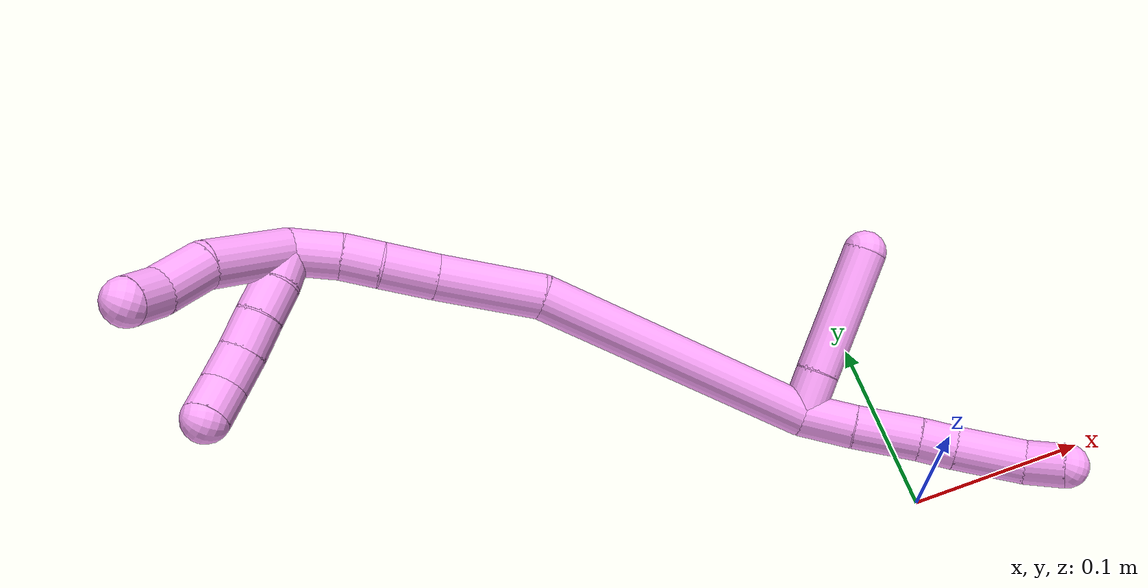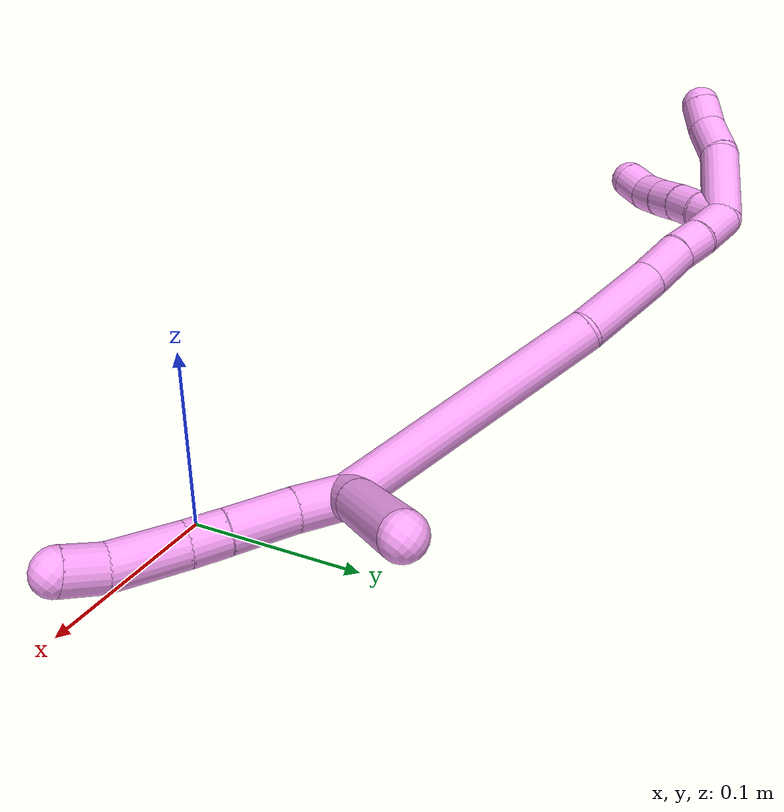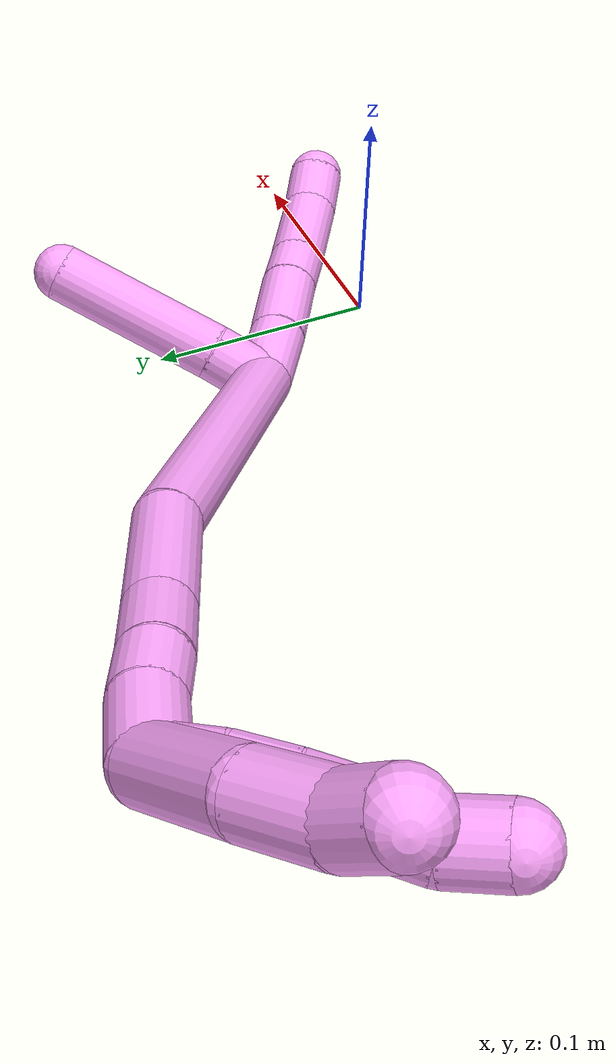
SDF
<sdf version="1.7">
 <world name="default">
  <model name="photoneo_s_sensor">
   <static>1</static>
   <pose>0 0 2 1.57079 1.57079 3.14159</pose>
   <link name="link">
    <inertial><mass>0.1</mass></inertial>
    <sensor name="sensor" type="depth">
     <update_rate>30</update_rate>
     <camera>
      <horizontal_fov>1.22</horizontal_fov>
      <image><width>1920</width><height>1200</height><format>B8G8R8</format></image>
      <clip><near>0.1</near><far>4</far></clip>
      <depth_camera><output>points</output></depth_camera>
     </camera>
     <plugin name="camera_plugin" filename="libgazebo_ros_depth_camera.so">
      <baseline>0.2</baseline>
      <alwaysOn>1</alwaysOn>
      <updateRate>0.0</updateRate>
      <cameraName>camera_ir</cameraName>
      <imageTopicName>/camera/color/image_raw</imageTopicName>
      <cameraInfoTopicName>/camera/color/camera_info</cameraInfoTopicName>
      <depthImageTopicName>/camera/depth/image_raw</depthImageTopicName>
      <depthImageCameraInfoTopicName>/camera/depth/camera_info</depthImageCameraInfoTopicName>
      <pointCloudTopicName>/camera/depth/points</pointCloudTopicName>
      <frameName>fr_optical</frameName>
      <pointCloudCutoff>0.1</pointCloudCutoff>
      <pointCloudCutoffMax>2.0</pointCloudCutoffMax>
      <distortionK1>0</distortionK1>
      <distortionK2>0</distortionK2>
      <distortionK3>0</distortionK3>
      <distortionT1>0</distortionT1>
      <distortionT2>0</distortionT2>
      <CxPrime>0</CxPrime>
      <Cx>0</Cx>
      <Cy>0</Cy>
      <focalLength>0</focalLength>
      <hackBaseline>0</hackBaseline>
     </plugin>
    </sensor>
   </link>
  </model>
  <model name="bin">
   <static>1</static>
   <link name="bottom">
    <collision name="collision-bottom">
     <pose>0 0 -0.01 0 -0 0</pose>
     <geometry><box><size>0.8 0.6 0.02</size></box></geometry>
     <surface>
      <friction><ode><mu>100</mu><mu2>100</mu2></ode></friction>
      <contact><collide_bitmask>65535</collide_bitmask></contact>
     </surface>
    </collision>
   </link>
   <link name="west_wall">
    <collision name="collision-west_wall">
     <pose>-0.41 0 0.1 0 -0 0</pose>
     <geometry><box><size>0.02 0.6 0.2</size></box></geometry>
     <surface>
      <friction><ode><mu>100</mu><mu2>100</mu2></ode></friction>
      <contact><collide_bitmask>65535</collide_bitmask></contact>
     </surface>
    </collision>
   </link>
   <link name="east_wall">
    <collision name="collision-east_wall">
     <pose>0.41 0 0.1 0 -0 0</pose>
     <geometry><box><size>0.02 0.6 0.2</size></box></geometry>
     <surface>
      <friction><ode><mu>100</mu><mu2>100</mu2></ode></friction>
      <contact><collide_bitmask>65535</collide_bitmask></contact>
     </surface>
    </collision>
   </link>
   <link name="south_wall">
    <collision name="collision-south_wall">
     <pose>0 -0.31 0.1 0 -0 0</pose>
     <geometry><box><size>0.8 0.02 0.2</size></box></geometry>
     <surface>
      <friction><ode><mu>100</mu><mu2>100</mu2></ode></friction>
      <contact><collide_bitmask>65535</collide_bitmask></contact>
     </surface>
    </collision>
   </link>
   <link name="north_wall">
    <collision name="collision-north_wall">
     <pose>0 0.31 0.1 0 -0 0</pose>
     <geometry><box><size>0.8 0.02 0.2</size></box></geometry>
     <surface>
      <friction><ode><mu>100</mu><mu2>100</mu2></ode></friction>
      <contact><collide_bitmask>65535</collide_bitmask></contact>
     </surface>
    </collision>
   </link>
  </model>
  <model name="4">
   <static>0</static>
   <link name="4">
    <collision name="collision-cylinder-e_1_2_8">
     <pose>0.007966 -0.00544 -0.011842 2.71094 0.548668 1.82028</pose>
     <geometry><cylinder><radius>0.0125</radius><length>0.030547</length></cylinder></geometry>
     <surface>
      <friction><ode><mu>1.16</mu><mu2>1.16</mu2><slip1>0</slip1><slip2>0</slip2></ode></friction>
      <contact><ode><kp>1e+06</kp><kd>1</kd><max_vel>0</max_vel><min_depth>0.001</min_depth></ode></contact>
     </surface>
    </collision>
    <visual name="visual-cylinder-e_1_2_8">
     <pose>0.007966 -0.00544 -0.011842 2.71094 0.548668 1.82028</pose>
     <geometry><cylinder><radius>0.0125</radius><length>0.030547</length></cylinder></geometry>
     <material><ambient>1 0.65098 0.996078 1</ambient></material>
    </visual>
    <collision name="collision-cylinder-e_2_8_9">
     <pose>0.0256 -0.016323 -0.03844 2.78824 0.55117 2.01527</pose>
     <geometry><cylinder><radius>0.0125</radius><length>0.036925</length></cylinder></geometry>
     <surface>
      <friction><ode><mu>1.16</mu><mu2>1.16</mu2><slip1>0</slip1><slip2>0</slip2></ode></friction>
      <contact><ode><kp>1e+06</kp><kd>1</kd><max_vel>0</max_vel><min_depth>0.001</min_depth></ode></contact>
     </surface>
    </collision>
    <visual name="visual-cylinder-e_2_8_9">
     <pose>0.0256 -0.016323 -0.03844 2.78824 0.55117 2.01527</pose>
     <geometry><cylinder><radius>0.0125</radius><length>0.036925</length></cylinder></geometry>
     <material><ambient>1 0.65098 0.996078 1</ambient></material>
    </visual>
    <collision name="collision-cylinder-e_3_9_10">
     <pose>0.040249 -0.025137 -0.061328 2.74861 0.514896 1.84687</pose>
     <geometry><cylinder><radius>0.0125</radius><length>0.020227</length></cylinder></geometry>
     <surface>
      <friction><ode><mu>1.16</mu><mu2>1.16</mu2><slip1>0</slip1><slip2>0</slip2></ode></friction>
      <contact><ode><kp>1e+06</kp><kd>1</kd><max_vel>0</max_vel><min_depth>0.001</min_depth></ode></contact>
     </surface>
    </collision>
    <visual name="visual-cylinder-e_3_9_10">
     <pose>0.040249 -0.025137 -0.061328 2.74861 0.514896 1.84687</pose>
     <geometry><cylinder><radius>0.0125</radius><length>0.020227</length></cylinder></geometry>
     <material><ambient>1 0.65098 0.996078 1</ambient></material>
    </visual>
    <collision name="collision-cylinder-e_4_10_11">
     <pose>0.05584 -0.034881 -0.084902 2.75014 0.565822 1.9445</pose>
     <geometry><cylinder><radius>0.0125</radius><length>0.039582</length></cylinder></geometry>
     <surface>
      <friction><ode><mu>1.16</mu><mu2>1.16</mu2><slip1>0</slip1><slip2>0</slip2></ode></friction>
      <contact><ode><kp>1e+06</kp><kd>1</kd><max_vel>0</max_vel><min_depth>0.001</min_depth></ode></contact>
     </surface>
    </collision>
    <visual name="visual-cylinder-e_4_10_11">
     <pose>0.05584 -0.034881 -0.084902 2.75014 0.565822 1.9445</pose>
     <geometry><cylinder><radius>0.0125</radius><length>0.039582</length></cylinder></geometry>
     <material><ambient>1 0.65098 0.996078 1</ambient></material>
    </visual>
    <collision name="collision-cylinder-e_5_11_6">
     <pose>0.074619 -0.045167 -0.1072 2.62301 0.802629 2.02424</pose>
     <geometry><cylinder><radius>0.0125</radius><length>0.022719</length></cylinder></geometry>
     <surface>
      <friction><ode><mu>1.16</mu><mu2>1.16</mu2><slip1>0</slip1><slip2>0</slip2></ode></friction>
      <contact><ode><kp>1e+06</kp><kd>1</kd><max_vel>0</max_vel><min_depth>0.001</min_depth></ode></contact>
     </surface>
    </collision>
    <visual name="visual-cylinder-e_5_11_6">
     <pose>0.074619 -0.045167 -0.1072 2.62301 0.802629 2.02424</pose>
     <geometry><cylinder><radius>0.0125</radius><length>0.022719</length></cylinder></geometry>
     <material><ambient>1 0.65098 0.996078 1</ambient></material>
    </visual>
    <collision name="collision-cylinder-e_1_2_12">
     <pose>0.008727 0.009105 -0.000364 -1.61079 0.763811 -0.791884</pose>
     <geometry><cylinder><radius>0.0125</radius><length>0.025236</length></cylinder></geometry>
     <surface>
      <friction><ode><mu>1.16</mu><mu2>1.16</mu2><slip1>0</slip1><slip2>0</slip2></ode></friction>
      <contact><ode><kp>1e+06</kp><kd>1</kd><max_vel>0</max_vel><min_depth>0.001</min_depth></ode></contact>
     </surface>
    </collision>
    <visual name="visual-cylinder-e_1_2_12">
     <pose>0.008727 0.009105 -0.000364 -1.61079 0.763811 -0.791884</pose>
     <geometry><cylinder><radius>0.0125</radius><length>0.025236</length></cylinder></geometry>
     <material><ambient>1 0.65098 0.996078 1</ambient></material>
    </visual>
    <collision name="collision-cylinder-e_2_12_5">
     <pose>0.042011 0.046244 -0.003655 -1.67482 0.716682 -0.787839</pose>
     <geometry><cylinder><radius>0.0125</radius><length>0.074764</length></cylinder></geometry>
     <surface>
      <friction><ode><mu>1.16</mu><mu2>1.16</mu2><slip1>0</slip1><slip2>0</slip2></ode></friction>
      <contact><ode><kp>1e+06</kp><kd>1</kd><max_vel>0</max_vel><min_depth>0.001</min_depth></ode></contact>
     </surface>
    </collision>
    <visual name="visual-cylinder-e_2_12_5">
     <pose>0.042011 0.046244 -0.003655 -1.67482 0.716682 -0.787839</pose>
     <geometry><cylinder><radius>0.0125</radius><length>0.074764</length></cylinder></geometry>
     <material><ambient>1 0.65098 0.996078 1</ambient></material>
    </visual>
    <collision name="collision-cylinder-e_1_2_13">
     <pose>-0.011824 0.021105 0.078692 -0.262036 -0.144119 0.019023</pose>
     <geometry><cylinder><radius>0.0125</radius><length>0.164654</length></cylinder></geometry>
     <surface>
      <friction><ode><mu>1.16</mu><mu2>1.16</mu2><slip1>0</slip1><slip2>0</slip2></ode></friction>
      <contact><ode><kp>1e+06</kp><kd>1</kd><max_vel>0</max_vel><min_depth>0.001</min_depth></ode></contact>
     </surface>
    </collision>
    <visual name="visual-cylinder-e_1_2_13">
     <pose>-0.011824 0.021105 0.078692 -0.262036 -0.144119 0.019023</pose>
     <geometry><cylinder><radius>0.0125</radius><length>0.164654</length></cylinder></geometry>
     <material><ambient>1 0.65098 0.996078 1</ambient></material>
    </visual>
    <collision name="collision-cylinder-e_2_13_14">
     <pose>-0.032407 0.044482 0.184916 -0.082298 -0.307033 0.012741</pose>
     <geometry><cylinder><radius>0.0125</radius><length>0.057962</length></cylinder></geometry>
     <surface>
      <friction><ode><mu>1.16</mu><mu2>1.16</mu2><slip1>0</slip1><slip2>0</slip2></ode></friction>
      <contact><ode><kp>1e+06</kp><kd>1</kd><max_vel>0</max_vel><min_depth>0.001</min_depth></ode></contact>
     </surface>
    </collision>
    <visual name="visual-cylinder-e_2_13_14">
     <pose>-0.032407 0.044482 0.184916 -0.082298 -0.307033 0.012741</pose>
     <geometry><cylinder><radius>0.0125</radius><length>0.057962</length></cylinder></geometry>
     <material><ambient>1 0.65098 0.996078 1</ambient></material>
    </visual>
    <collision name="collision-cylinder-e_3_14_15">
     <pose>-0.044712 0.047619 0.226737 -0.060567 -0.242877 0.007394</pose>
     <geometry><cylinder><radius>0.0125</radius><length>0.029494</length></cylinder></geometry>
     <surface>
      <friction><ode><mu>1.16</mu><mu2>1.16</mu2><slip1>0</slip1><slip2>0</slip2></ode></friction>
      <contact><ode><kp>1e+06</kp><kd>1</kd><max_vel>0</max_vel><min_depth>0.001</min_depth></ode></contact>
     </surface>
    </collision>
    <visual name="visual-cylinder-e_3_14_15">
     <pose>-0.044712 0.047619 0.226737 -0.060567 -0.242877 0.007394</pose>
     <geometry><cylinder><radius>0.0125</radius><length>0.029494</length></cylinder></geometry>
     <material><ambient>1 0.65098 0.996078 1</ambient></material>
    </visual>
    <collision name="collision-cylinder-e_4_15_16">
     <pose>-0.051624 0.04996 0.250752 -0.150374 -0.329574 0.025052</pose>
     <geometry><cylinder><radius>0.0125</radius><length>0.020796</length></cylinder></geometry>
     <surface>
      <friction><ode><mu>1.16</mu><mu2>1.16</mu2><slip1>0</slip1><slip2>0</slip2></ode></friction>
      <contact><ode><kp>1e+06</kp><kd>1</kd><max_vel>0</max_vel><min_depth>0.001</min_depth></ode></contact>
     </surface>
    </collision>
    <visual name="visual-cylinder-e_4_15_16">
     <pose>-0.051624 0.04996 0.250752 -0.150374 -0.329574 0.025052</pose>
     <geometry><cylinder><radius>0.0125</radius><length>0.020796</length></cylinder></geometry>
     <material><ambient>1 0.65098 0.996078 1</ambient></material>
    </visual>
    <collision name="collision-cylinder-e_5_16_1">
     <pose>-0.060045 0.051689 0.273045 -0.020361 -0.382459 0.003942</pose>
     <geometry><cylinder><radius>0.0125</radius><length>0.027094</length></cylinder></geometry>
     <surface>
      <friction><ode><mu>1.16</mu><mu2>1.16</mu2><slip1>0</slip1><slip2>0</slip2></ode></friction>
      <contact><ode><kp>1e+06</kp><kd>1</kd><max_vel>0</max_vel><min_depth>0.001</min_depth></ode></contact>
     </surface>
    </collision>
    <visual name="visual-cylinder-e_5_16_1">
     <pose>-0.060045 0.051689 0.273045 -0.020361 -0.382459 0.003942</pose>
     <geometry><cylinder><radius>0.0125</radius><length>0.027094</length></cylinder></geometry>
     <material><ambient>1 0.65098 0.996078 1</ambient></material>
    </visual>
    <collision name="collision-cylinder-e_1_1_17">
     <pose>-0.068163 0.042536 0.287059 1.41809 -0.311236 -0.267569</pose>
     <geometry><cylinder><radius>0.0125</radius><length>0.02</length></cylinder></geometry>
     <surface>
      <friction><ode><mu>1.16</mu><mu2>1.16</mu2><slip1>0</slip1><slip2>0</slip2></ode></friction>
      <contact><ode><kp>1e+06</kp><kd>1</kd><max_vel>0</max_vel><min_depth>0.001</min_depth></ode></contact>
     </surface>
    </collision>
    <visual name="visual-cylinder-e_1_1_17">
     <pose>-0.068163 0.042536 0.287059 1.41809 -0.311236 -0.267569</pose>
     <geometry><cylinder><radius>0.0125</radius><length>0.02</length></cylinder></geometry>
     <material><ambient>1 0.65098 0.996078 1</ambient></material>
    </visual>
    <collision name="collision-cylinder-e_2_17_18">
     <pose>-0.075256 0.024254 0.290748 1.32342 -0.414791 -0.324884</pose>
     <geometry><cylinder><radius>0.0125</radius><length>0.02</length></cylinder></geometry>
     <surface>
      <friction><ode><mu>1.16</mu><mu2>1.16</mu2><slip1>0</slip1><slip2>0</slip2></ode></friction>
      <contact><ode><kp>1e+06</kp><kd>1</kd><max_vel>0</max_vel><min_depth>0.001</min_depth></ode></contact>
     </surface>
    </collision>
    <visual name="visual-cylinder-e_2_17_18">
     <pose>-0.075256 0.024254 0.290748 1.32342 -0.414791 -0.324884</pose>
     <geometry><cylinder><radius>0.0125</radius><length>0.02</length></cylinder></geometry>
     <material><ambient>1 0.65098 0.996078 1</ambient></material>
    </visual>
    <collision name="collision-cylinder-e_3_18_19">
     <pose>-0.083961 0.006736 0.294835 1.36041 -0.486531 -0.396286</pose>
     <geometry><cylinder><radius>0.0125</radius><length>0.02</length></cylinder></geometry>
     <surface>
      <friction><ode><mu>1.16</mu><mu2>1.16</mu2><slip1>0</slip1><slip2>0</slip2></ode></friction>
      <contact><ode><kp>1e+06</kp><kd>1</kd><max_vel>0</max_vel><min_depth>0.001</min_depth></ode></contact>
     </surface>
    </collision>
    <visual name="visual-cylinder-e_3_18_19">
     <pose>-0.083961 0.006736 0.294835 1.36041 -0.486531 -0.396286</pose>
     <geometry><cylinder><radius>0.0125</radius><length>0.02</length></cylinder></geometry>
     <material><ambient>1 0.65098 0.996078 1</ambient></material>
    </visual>
    <collision name="collision-cylinder-e_4_19_20">
     <pose>-0.093208 -0.010477 0.299066 1.29933 -0.474727 -0.363509</pose>
     <geometry><cylinder><radius>0.0125</radius><length>0.02</length></cylinder></geometry>
     <surface>
      <friction><ode><mu>1.16</mu><mu2>1.16</mu2><slip1>0</slip1><slip2>0</slip2></ode></friction>
      <contact><ode><kp>1e+06</kp><kd>1</kd><max_vel>0</max_vel><min_depth>0.001</min_depth></ode></contact>
     </surface>
    </collision>
    <visual name="visual-cylinder-e_4_19_20">
     <pose>-0.093208 -0.010477 0.299066 1.29933 -0.474727 -0.363509</pose>
     <geometry><cylinder><radius>0.0125</radius><length>0.02</length></cylinder></geometry>
     <material><ambient>1 0.65098 0.996078 1</ambient></material>
    </visual>
    <collision name="collision-cylinder-e_5_20_4">
     <pose>-0.099355 -0.028435 0.304508 1.25602 -0.158299 -0.11505</pose>
     <geometry><cylinder><radius>0.0125</radius><length>0.02</length></cylinder></geometry>
     <surface>
      <friction><ode><mu>1.16</mu><mu2>1.16</mu2><slip1>0</slip1><slip2>0</slip2></ode></friction>
      <contact><ode><kp>1e+06</kp><kd>1</kd><max_vel>0</max_vel><min_depth>0.001</min_depth></ode></contact>
     </surface>
    </collision>
    <visual name="visual-cylinder-e_5_20_4">
     <pose>-0.099355 -0.028435 0.304508 1.25602 -0.158299 -0.11505</pose>
     <geometry><cylinder><radius>0.0125</radius><length>0.02</length></cylinder></geometry>
     <material><ambient>1 0.65098 0.996078 1</ambient></material>
    </visual>
    <collision name="collision-cylinder-e_1_1_21">
     <pose>-0.064539 0.038158 0.307219 0.567927 0.021928 0.0064</pose>
     <geometry><cylinder><radius>0.0125</radius><length>0.051277</length></cylinder></geometry>
     <surface>
      <friction><ode><mu>1.16</mu><mu2>1.16</mu2><slip1>0</slip1><slip2>0</slip2></ode></friction>
      <contact><ode><kp>1e+06</kp><kd>1</kd><max_vel>0</max_vel><min_depth>0.001</min_depth></ode></contact>
     </surface>
    </collision>
    <visual name="visual-cylinder-e_1_1_21">
     <pose>-0.064539 0.038158 0.307219 0.567927 0.021928 0.0064</pose>
     <geometry><cylinder><radius>0.0125</radius><length>0.051277</length></cylinder></geometry>
     <material><ambient>1 0.65098 0.996078 1</ambient></material>
    </visual>
    <collision name="collision-cylinder-e_2_21_22">
     <pose>-0.066198 0.01387 0.338336 0.834993 -0.155575 -0.069121</pose>
     <geometry><cylinder><radius>0.0125</radius><length>0.028678</length></cylinder></geometry>
     <surface>
      <friction><ode><mu>1.16</mu><mu2>1.16</mu2><slip1>0</slip1><slip2>0</slip2></ode></friction>
      <contact><ode><kp>1e+06</kp><kd>1</kd><max_vel>0</max_vel><min_depth>0.001</min_depth></ode></contact>
     </surface>
    </collision>
    <visual name="visual-cylinder-e_2_21_22">
     <pose>-0.066198 0.01387 0.338336 0.834993 -0.155575 -0.069121</pose>
     <geometry><cylinder><radius>0.0125</radius><length>0.028678</length></cylinder></geometry>
     <material><ambient>1 0.65098 0.996078 1</ambient></material>
    </visual>
    <collision name="collision-cylinder-e_3_22_3">
     <pose>-0.066881 -0.003466 0.35501 0.761683 0.15421 0.061847</pose>
     <geometry><cylinder><radius>0.0125</radius><length>0.020045</length></cylinder></geometry>
     <surface>
      <friction><ode><mu>1.16</mu><mu2>1.16</mu2><slip1>0</slip1><slip2>0</slip2></ode></friction>
      <contact><ode><kp>1e+06</kp><kd>1</kd><max_vel>0</max_vel><min_depth>0.001</min_depth></ode></contact>
     </surface>
    </collision>
    <visual name="visual-cylinder-e_3_22_3">
     <pose>-0.066881 -0.003466 0.35501 0.761683 0.15421 0.061847</pose>
     <geometry><cylinder><radius>0.0125</radius><length>0.020045</length></cylinder></geometry>
     <material><ambient>1 0.65098 0.996078 1</ambient></material>
    </visual>
    <collision name="collision-sphere-3">
     <pose>-0.065341 -0.010301 0.362178 0 -0 0</pose>
     <geometry><sphere><radius>0.0125</radius></sphere></geometry>
     <surface>
      <friction><ode><mu>1.16</mu><mu2>1.16</mu2><slip1>0</slip1><slip2>0</slip2></ode></friction>
      <contact><ode><kp>1e+06</kp><kd>1</kd><max_vel>0</max_vel><min_depth>0.001</min_depth></ode></contact>
     </surface>
    </collision>
    <visual name="visual-sphere-3">
     <pose>-0.065341 -0.010301 0.362178 0 -0 0</pose>
     <geometry><sphere><radius>0.0125</radius></sphere></geometry>
     <material><ambient>1 0.65098 0.996078 1</ambient></material>
    </visual>
    <collision name="collision-sphere-22">
     <pose>-0.06842 0.003369 0.347843 0 -0 0</pose>
     <geometry><sphere><radius>0.0125</radius></sphere></geometry>
     <surface>
      <friction><ode><mu>1.16</mu><mu2>1.16</mu2><slip1>0</slip1><slip2>0</slip2></ode></friction>
      <contact><ode><kp>1e+06</kp><kd>1</kd><max_vel>0</max_vel><min_depth>0.001</min_depth></ode></contact>
     </surface>
    </collision>
    <visual name="visual-sphere-22">
     <pose>-0.06842 0.003369 0.347843 0 -0 0</pose>
     <geometry><sphere><radius>0.0125</radius></sphere></geometry>
     <material><ambient>1 0.65098 0.996078 1</ambient></material>
    </visual>
    <collision name="collision-sphere-21">
     <pose>-0.063977 0.024371 0.328828 0 -0 0</pose>
     <geometry><sphere><radius>0.0125</radius></sphere></geometry>
     <surface>
      <friction><ode><mu>1.16</mu><mu2>1.16</mu2><slip1>0</slip1><slip2>0</slip2></ode></friction>
      <contact><ode><kp>1e+06</kp><kd>1</kd><max_vel>0</max_vel><min_depth>0.001</min_depth></ode></contact>
     </surface>
    </collision>
    <visual name="visual-sphere-21">
     <pose>-0.063977 0.024371 0.328828 0 -0 0</pose>
     <geometry><sphere><radius>0.0125</radius></sphere></geometry>
     <material><ambient>1 0.65098 0.996078 1</ambient></material>
    </visual>
    <collision name="collision-sphere-4">
     <pose>-0.100931 -0.037825 0.307566 0 -0 0</pose>
     <geometry><sphere><radius>0.0125</radius></sphere></geometry>
     <surface>
      <friction><ode><mu>1.16</mu><mu2>1.16</mu2><slip1>0</slip1><slip2>0</slip2></ode></friction>
      <contact><ode><kp>1e+06</kp><kd>1</kd><max_vel>0</max_vel><min_depth>0.001</min_depth></ode></contact>
     </surface>
    </collision>
    <visual name="visual-sphere-4">
     <pose>-0.100931 -0.037825 0.307566 0 -0 0</pose>
     <geometry><sphere><radius>0.0125</radius></sphere></geometry>
     <material><ambient>1 0.65098 0.996078 1</ambient></material>
    </visual>
    <collision name="collision-sphere-20">
     <pose>-0.097779 -0.019045 0.301451 0 -0 0</pose>
     <geometry><sphere><radius>0.0125</radius></sphere></geometry>
     <surface>
      <friction><ode><mu>1.16</mu><mu2>1.16</mu2><slip1>0</slip1><slip2>0</slip2></ode></friction>
      <contact><ode><kp>1e+06</kp><kd>1</kd><max_vel>0</max_vel><min_depth>0.001</min_depth></ode></contact>
     </surface>
    </collision>
    <visual name="visual-sphere-20">
     <pose>-0.097779 -0.019045 0.301451 0 -0 0</pose>
     <geometry><sphere><radius>0.0125</radius></sphere></geometry>
     <material><ambient>1 0.65098 0.996078 1</ambient></material>
    </visual>
    <collision name="collision-sphere-6">
     <pose>0.082789 -0.04908 -0.114055 0 -0 0</pose>
     <geometry><sphere><radius>0.0125</radius></sphere></geometry>
     <surface>
      <friction><ode><mu>1.16</mu><mu2>1.16</mu2><slip1>0</slip1><slip2>0</slip2></ode></friction>
      <contact><ode><kp>1e+06</kp><kd>1</kd><max_vel>0</max_vel><min_depth>0.001</min_depth></ode></contact>
     </surface>
    </collision>
    <visual name="visual-sphere-6">
     <pose>0.082789 -0.04908 -0.114055 0 -0 0</pose>
     <geometry><sphere><radius>0.0125</radius></sphere></geometry>
     <material><ambient>1 0.65098 0.996078 1</ambient></material>
    </visual>
    <collision name="collision-sphere-11">
     <pose>0.06645 -0.041255 -0.100345 0 -0 0</pose>
     <geometry><sphere><radius>0.0125</radius></sphere></geometry>
     <surface>
      <friction><ode><mu>1.16</mu><mu2>1.16</mu2><slip1>0</slip1><slip2>0</slip2></ode></friction>
      <contact><ode><kp>1e+06</kp><kd>1</kd><max_vel>0</max_vel><min_depth>0.001</min_depth></ode></contact>
     </surface>
    </collision>
    <visual name="visual-sphere-11">
     <pose>0.06645 -0.041255 -0.100345 0 -0 0</pose>
     <geometry><sphere><radius>0.0125</radius></sphere></geometry>
     <material><ambient>1 0.65098 0.996078 1</ambient></material>
    </visual>
    <collision name="collision-sphere-10">
     <pose>0.04523 -0.028507 -0.069459 0 -0 0</pose>
     <geometry><sphere><radius>0.0125</radius></sphere></geometry>
     <surface>
      <friction><ode><mu>1.16</mu><mu2>1.16</mu2><slip1>0</slip1><slip2>0</slip2></ode></friction>
      <contact><ode><kp>1e+06</kp><kd>1</kd><max_vel>0</max_vel><min_depth>0.001</min_depth></ode></contact>
     </surface>
    </collision>
    <visual name="visual-sphere-10">
     <pose>0.04523 -0.028507 -0.069459 0 -0 0</pose>
     <geometry><sphere><radius>0.0125</radius></sphere></geometry>
     <material><ambient>1 0.65098 0.996078 1</ambient></material>
    </visual>
    <collision name="collision-sphere-9">
     <pose>0.035269 -0.021766 -0.053197 0 -0 0</pose>
     <geometry><sphere><radius>0.0125</radius></sphere></geometry>
     <surface>
      <friction><ode><mu>1.16</mu><mu2>1.16</mu2><slip1>0</slip1><slip2>0</slip2></ode></friction>
      <contact><ode><kp>1e+06</kp><kd>1</kd><max_vel>0</max_vel><min_depth>0.001</min_depth></ode></contact>
     </surface>
    </collision>
    <visual name="visual-sphere-9">
     <pose>0.035269 -0.021766 -0.053197 0 -0 0</pose>
     <geometry><sphere><radius>0.0125</radius></sphere></geometry>
     <material><ambient>1 0.65098 0.996078 1</ambient></material>
    </visual>
    <collision name="collision-sphere-2">
     <geometry><sphere><radius>0.0125</radius></sphere></geometry>
     <surface>
      <friction><ode><mu>1.16</mu><mu2>1.16</mu2><slip1>0</slip1><slip2>0</slip2></ode></friction>
      <contact><ode><kp>1e+06</kp><kd>1</kd><max_vel>0</max_vel><min_depth>0.001</min_depth></ode></contact>
     </surface>
    </collision>
    <visual name="visual-sphere-2">
     <geometry><sphere><radius>0.0125</radius></sphere></geometry>
     <material><ambient>1 0.65098 0.996078 1</ambient></material>
    </visual>
    <collision name="collision-sphere-19">
     <pose>-0.088637 -0.001909 0.296681 0 -0 0</pose>
     <geometry><sphere><radius>0.0125</radius></sphere></geometry>
     <surface>
      <friction><ode><mu>1.16</mu><mu2>1.16</mu2><slip1>0</slip1><slip2>0</slip2></ode></friction>
      <contact><ode><kp>1e+06</kp><kd>1</kd><max_vel>0</max_vel><min_depth>0.001</min_depth></ode></contact>
     </surface>
    </collision>
    <visual name="visual-sphere-19">
     <pose>-0.088637 -0.001909 0.296681 0 -0 0</pose>
     <geometry><sphere><radius>0.0125</radius></sphere></geometry>
     <material><ambient>1 0.65098 0.996078 1</ambient></material>
    </visual>
    <collision name="collision-sphere-8">
     <pose>0.015932 -0.01088 -0.023683 0 -0 0</pose>
     <geometry><sphere><radius>0.0125</radius></sphere></geometry>
     <surface>
      <friction><ode><mu>1.16</mu><mu2>1.16</mu2><slip1>0</slip1><slip2>0</slip2></ode></friction>
      <contact><ode><kp>1e+06</kp><kd>1</kd><max_vel>0</max_vel><min_depth>0.001</min_depth></ode></contact>
     </surface>
    </collision>
    <visual name="visual-sphere-8">
     <pose>0.015932 -0.01088 -0.023683 0 -0 0</pose>
     <geometry><sphere><radius>0.0125</radius></sphere></geometry>
     <material><ambient>1 0.65098 0.996078 1</ambient></material>
    </visual>
    <collision name="collision-sphere-12">
     <pose>0.017455 0.018211 -0.000729 0 -0 0</pose>
     <geometry><sphere><radius>0.0125</radius></sphere></geometry>
     <surface>
      <friction><ode><mu>1.16</mu><mu2>1.16</mu2><slip1>0</slip1><slip2>0</slip2></ode></friction>
      <contact><ode><kp>1e+06</kp><kd>1</kd><max_vel>0</max_vel><min_depth>0.001</min_depth></ode></contact>
     </surface>
    </collision>
    <visual name="visual-sphere-12">
     <pose>0.017455 0.018211 -0.000729 0 -0 0</pose>
     <geometry><sphere><radius>0.0125</radius></sphere></geometry>
     <material><ambient>1 0.65098 0.996078 1</ambient></material>
    </visual>
    <collision name="collision-sphere-5">
     <pose>0.066567 0.074278 -0.006582 0 -0 0</pose>
     <geometry><sphere><radius>0.0125</radius></sphere></geometry>
     <surface>
      <friction><ode><mu>1.16</mu><mu2>1.16</mu2><slip1>0</slip1><slip2>0</slip2></ode></friction>
      <contact><ode><kp>1e+06</kp><kd>1</kd><max_vel>0</max_vel><min_depth>0.001</min_depth></ode></contact>
     </surface>
    </collision>
    <visual name="visual-sphere-5">
     <pose>0.066567 0.074278 -0.006582 0 -0 0</pose>
     <geometry><sphere><radius>0.0125</radius></sphere></geometry>
     <material><ambient>1 0.65098 0.996078 1</ambient></material>
    </visual>
    <collision name="collision-sphere-13">
     <pose>-0.023648 0.042211 0.157384 0 -0 0</pose>
     <geometry><sphere><radius>0.0125</radius></sphere></geometry>
     <surface>
      <friction><ode><mu>1.16</mu><mu2>1.16</mu2><slip1>0</slip1><slip2>0</slip2></ode></friction>
      <contact><ode><kp>1e+06</kp><kd>1</kd><max_vel>0</max_vel><min_depth>0.001</min_depth></ode></contact>
     </surface>
    </collision>
    <visual name="visual-sphere-13">
     <pose>-0.023648 0.042211 0.157384 0 -0 0</pose>
     <geometry><sphere><radius>0.0125</radius></sphere></geometry>
     <material><ambient>1 0.65098 0.996078 1</ambient></material>
    </visual>
    <collision name="collision-sphere-14">
     <pose>-0.041166 0.046753 0.212448 0 -0 0</pose>
     <geometry><sphere><radius>0.0125</radius></sphere></geometry>
     <surface>
      <friction><ode><mu>1.16</mu><mu2>1.16</mu2><slip1>0</slip1><slip2>0</slip2></ode></friction>
      <contact><ode><kp>1e+06</kp><kd>1</kd><max_vel>0</max_vel><min_depth>0.001</min_depth></ode></contact>
     </surface>
    </collision>
    <visual name="visual-sphere-14">
     <pose>-0.041166 0.046753 0.212448 0 -0 0</pose>
     <geometry><sphere><radius>0.0125</radius></sphere></geometry>
     <material><ambient>1 0.65098 0.996078 1</ambient></material>
    </visual>
    <collision name="collision-sphere-15">
     <pose>-0.048259 0.048486 0.241025 0 -0 0</pose>
     <geometry><sphere><radius>0.0125</radius></sphere></geometry>
     <surface>
      <friction><ode><mu>1.16</mu><mu2>1.16</mu2><slip1>0</slip1><slip2>0</slip2></ode></friction>
      <contact><ode><kp>1e+06</kp><kd>1</kd><max_vel>0</max_vel><min_depth>0.001</min_depth></ode></contact>
     </surface>
    </collision>
    <visual name="visual-sphere-15">
     <pose>-0.048259 0.048486 0.241025 0 -0 0</pose>
     <geometry><sphere><radius>0.0125</radius></sphere></geometry>
     <material><ambient>1 0.65098 0.996078 1</ambient></material>
    </visual>
    <collision name="collision-sphere-16">
     <pose>-0.054989 0.051433 0.26048 0 -0 0</pose>
     <geometry><sphere><radius>0.0125</radius></sphere></geometry>
     <surface>
      <friction><ode><mu>1.16</mu><mu2>1.16</mu2><slip1>0</slip1><slip2>0</slip2></ode></friction>
      <contact><ode><kp>1e+06</kp><kd>1</kd><max_vel>0</max_vel><min_depth>0.001</min_depth></ode></contact>
     </surface>
    </collision>
    <visual name="visual-sphere-16">
     <pose>-0.054989 0.051433 0.26048 0 -0 0</pose>
     <geometry><sphere><radius>0.0125</radius></sphere></geometry>
     <material><ambient>1 0.65098 0.996078 1</ambient></material>
    </visual>
    <collision name="collision-sphere-1">
     <pose>-0.065101 0.051945 0.285611 0 -0 0</pose>
     <geometry><sphere><radius>0.0125</radius></sphere></geometry>
     <surface>
      <friction><ode><mu>1.16</mu><mu2>1.16</mu2><slip1>0</slip1><slip2>0</slip2></ode></friction>
      <contact><ode><kp>1e+06</kp><kd>1</kd><max_vel>0</max_vel><min_depth>0.001</min_depth></ode></contact>
     </surface>
    </collision>
    <visual name="visual-sphere-1">
     <pose>-0.065101 0.051945 0.285611 0 -0 0</pose>
     <geometry><sphere><radius>0.0125</radius></sphere></geometry>
     <material><ambient>1 0.65098 0.996078 1</ambient></material>
    </visual>
    <collision name="collision-sphere-18">
     <pose>-0.079286 0.015381 0.292989 0 -0 0</pose>
     <geometry><sphere><radius>0.0125</radius></sphere></geometry>
     <surface>
      <friction><ode><mu>1.16</mu><mu2>1.16</mu2><slip1>0</slip1><slip2>0</slip2></ode></friction>
      <contact><ode><kp>1e+06</kp><kd>1</kd><max_vel>0</max_vel><min_depth>0.001</min_depth></ode></contact>
     </surface>
    </collision>
    <visual name="visual-sphere-18">
     <pose>-0.079286 0.015381 0.292989 0 -0 0</pose>
     <geometry><sphere><radius>0.0125</radius></sphere></geometry>
     <material><ambient>1 0.65098 0.996078 1</ambient></material>
    </visual>
    <collision name="collision-sphere-17">
     <pose>-0.071226 0.033128 0.288507 0 -0 0</pose>
     <geometry><sphere><radius>0.0125</radius></sphere></geometry>
     <surface>
      <friction><ode><mu>1.16</mu><mu2>1.16</mu2><slip1>0</slip1><slip2>0</slip2></ode></friction>
      <contact><ode><kp>1e+06</kp><kd>1</kd><max_vel>0</max_vel><min_depth>0.001</min_depth></ode></contact>
     </surface>
    </collision>
    <visual name="visual-sphere-17">
     <pose>-0.071226 0.033128 0.288507 0 -0 0</pose>
     <geometry><sphere><radius>0.0125</radius></sphere></geometry>
     <material><ambient>1 0.65098 0.996078 1</ambient></material>
    </visual>
    <inertial>
     <pose>-0.01803 0.01717 0.127962 0 -0 0</pose>
     <mass>0.75</mass>
     <inertia>
      <ixx>0.000442</ixx>
      <ixy>0</ixy>
      <ixz>0</ixz>
      <iyy>0.000428</iyy>
      <iyz>0</iyz>
      <izz>-5.7e-05</izz>
     </inertia>
    </inertial>
   </link>
   <pose>-0.042598 0.068027 0.011473 -0.319285 -0.905494 0.000888</pose>
  </model>
 </world>
</sdf>
